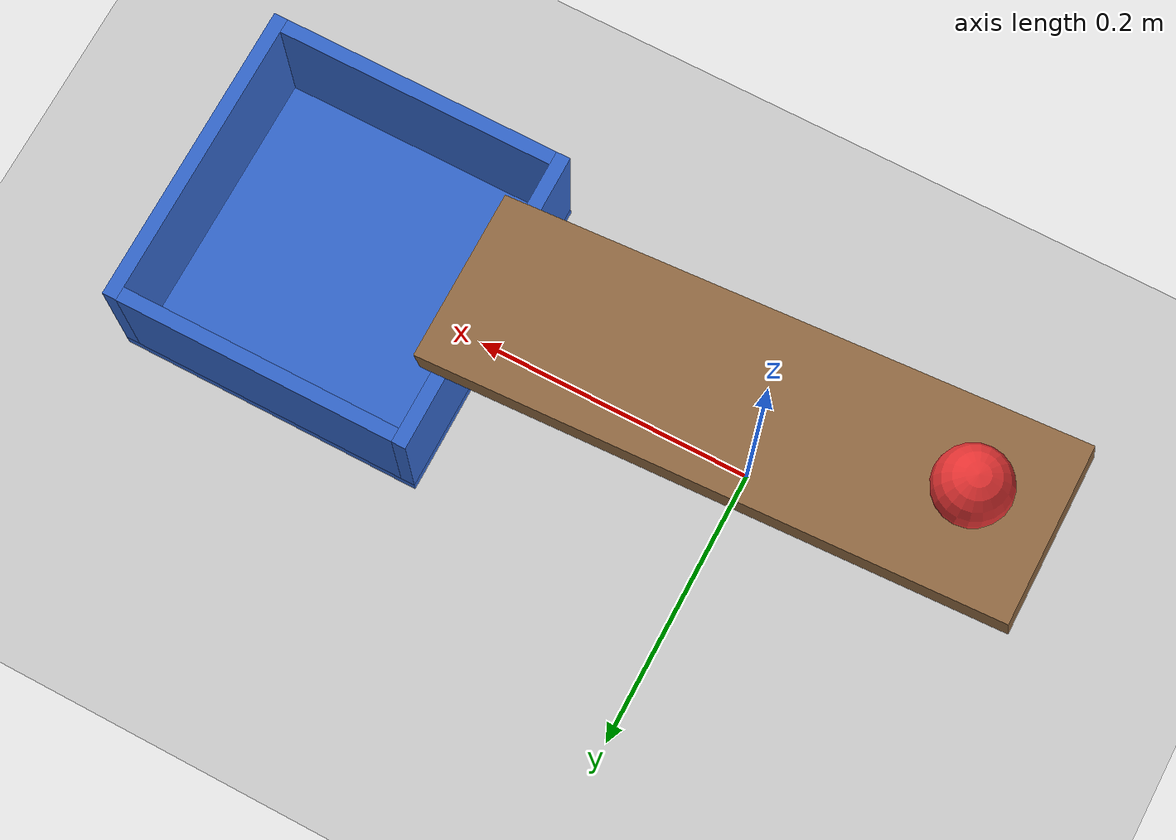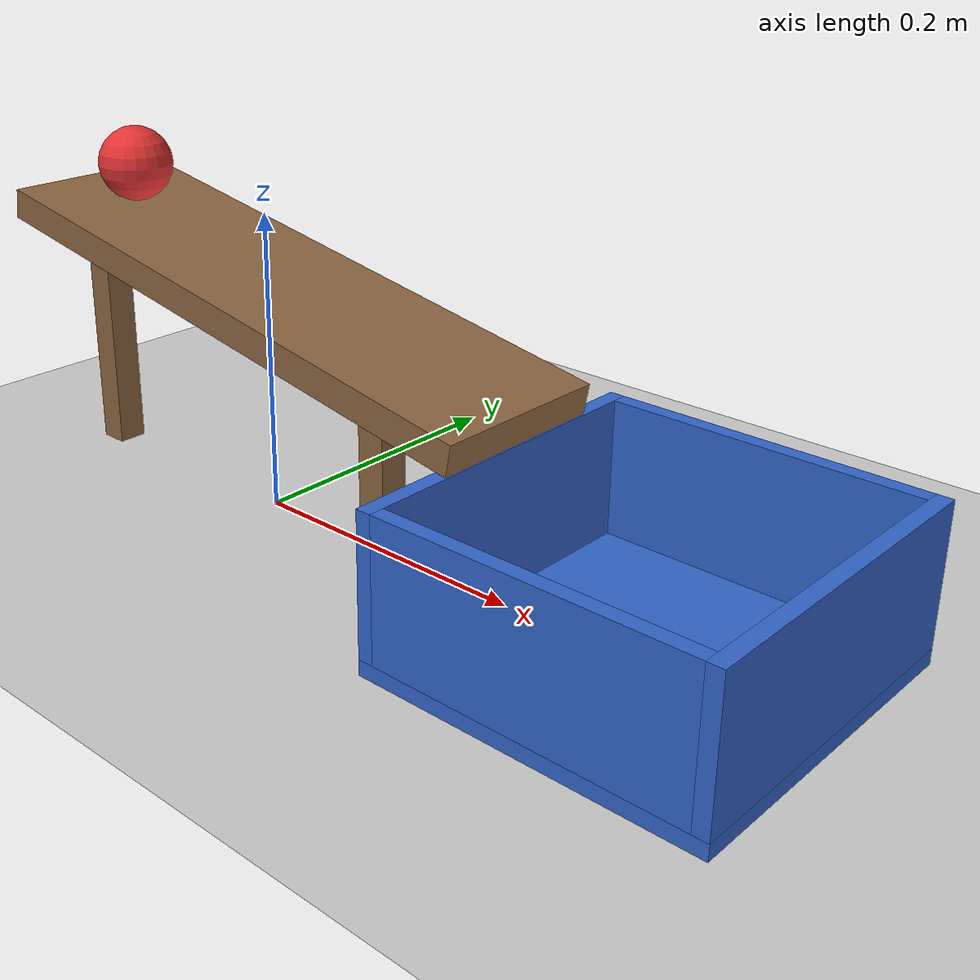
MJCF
<mujoco model="ball_ramp_cup">
  <compiler angle="degree"/>
  <option timestep="0.002" gravity="0 0 -9.81"/>

  <visual>
    <global offwidth="1280" offheight="720"/>
  </visual>

  <asset>
    <material name="floor_mat" rgba="0.8 0.8 0.8 1"/>
    <material name="ramp_mat" rgba="0.55 0.4 0.25 1"/>
    <material name="cup_mat" rgba="0.2 0.4 0.8 1"/>
    <material name="ball_mat" rgba="0.9 0.2 0.2 1"/>
  </asset>

  <worldbody>
    <light name="sun" pos="0 0 2" dir="0 0 -1" directional="true"/>
    <geom name="floor" type="plane" size="2 2 0.1" material="floor_mat"/>

    <!-- Ramp: tilted 10 deg, descending toward +x; low top edge at (0.21, 0.125) -->
    <geom name="ramp_deck" type="box" size="0.2 0.06 0.01" pos="0.0113 0 0.1499" euler="0 10 0" material="ramp_mat"/>
    <geom name="ramp_post_high" type="box" size="0.01 0.01 0.085" pos="-0.17 0 0.085" material="ramp_mat"/>
    <geom name="ramp_post_low" type="box" size="0.01 0.01 0.062" pos="0.1 0 0.062" material="ramp_mat"/>

    <!-- Cup: open-top box, inner floor at z=0.01, inner x from 0.2 to 0.4, walls up to z=0.1 -->
    <body name="cup" pos="0.3 0 0">
      <geom name="cup_base" type="box" size="0.11 0.11 0.005" pos="0 0 0.005" condim="6" friction="1 0.01 0.005" material="cup_mat"/>
      <geom name="cup_wall_near" type="box" size="0.005 0.11 0.045" pos="-0.105 0 0.055" condim="6" friction="1 0.01 0.005" material="cup_mat"/>
      <geom name="cup_wall_far" type="box" size="0.005 0.11 0.045" pos="0.105 0 0.055" condim="6" friction="1 0.01 0.005" material="cup_mat"/>
      <geom name="cup_wall_left" type="box" size="0.1 0.005 0.045" pos="0 0.105 0.055" condim="6" friction="1 0.01 0.005" material="cup_mat"/>
      <geom name="cup_wall_right" type="box" size="0.1 0.005 0.045" pos="0 -0.105 0.055" condim="6" friction="1 0.01 0.005" material="cup_mat"/>
    </body>

    <!-- Ball -->
    <body name="ball" pos="-0.1304 0 0.211">
      <freejoint name="ball_free"/>
      <geom name="ball" type="sphere" size="0.025" mass="0.05" material="ball_mat"/>
    </body>
  </worldbody>

  <keyframe>
    <key name="start" qpos="-0.1304 0 0.211 1 0 0 0" qvel="0 0 0 0 0 0"/>
  </keyframe>
</mujoco>
